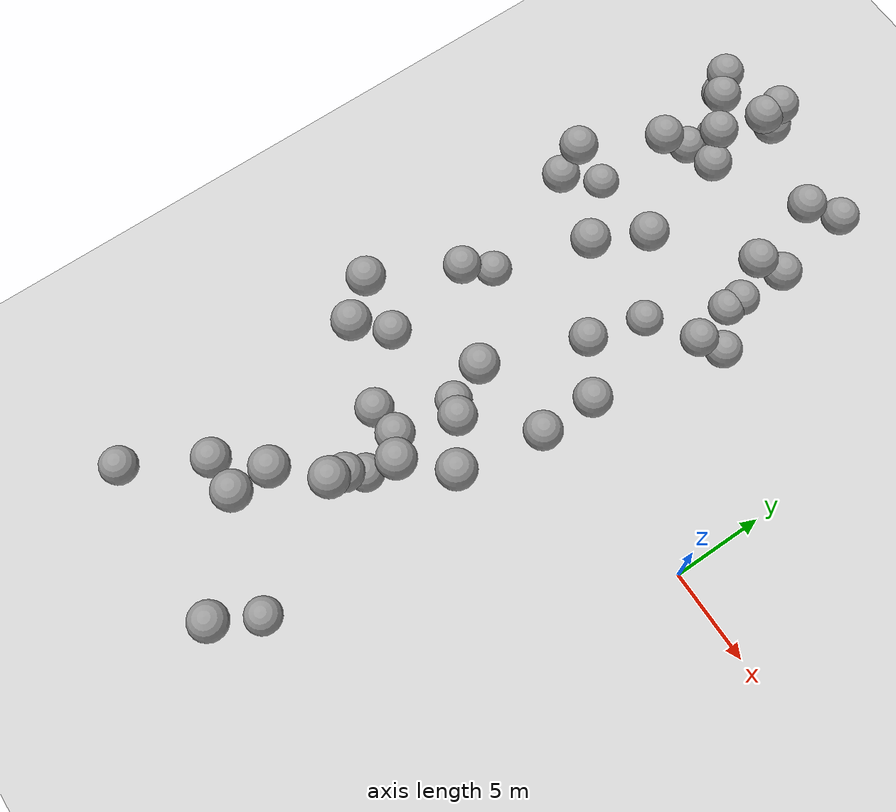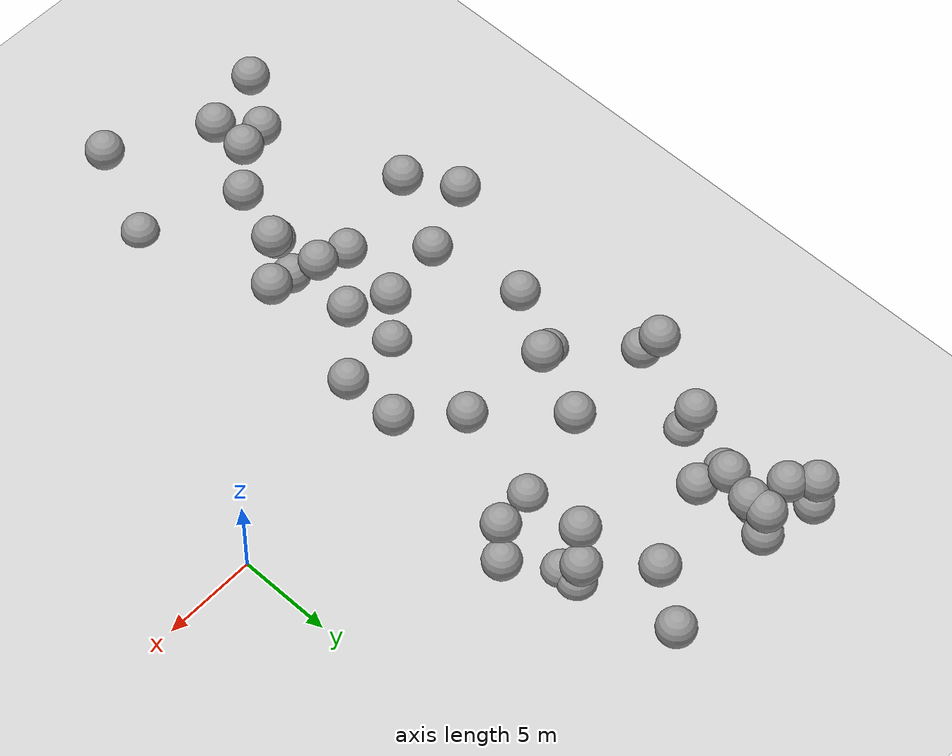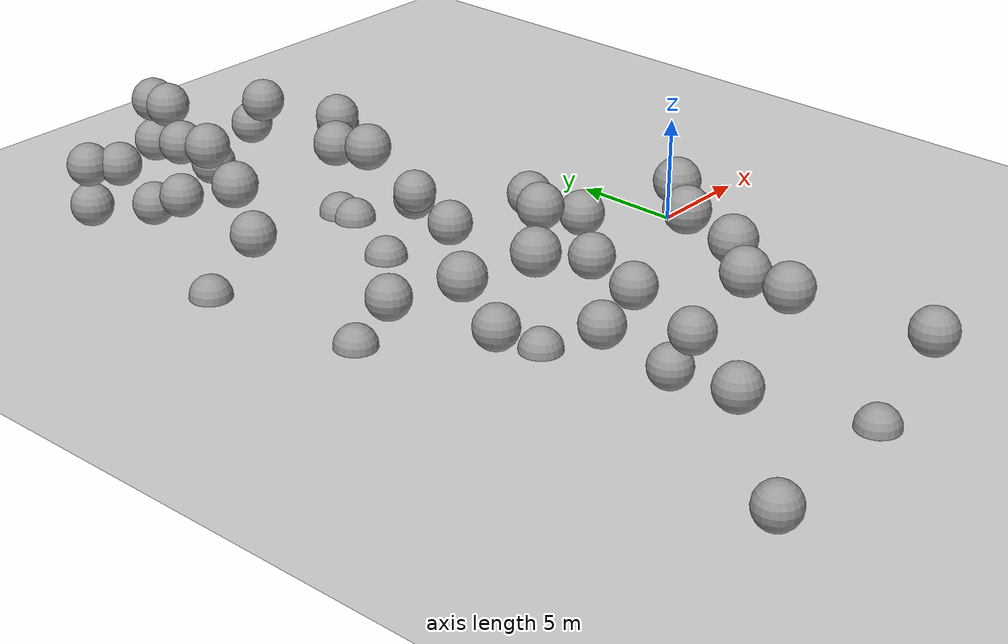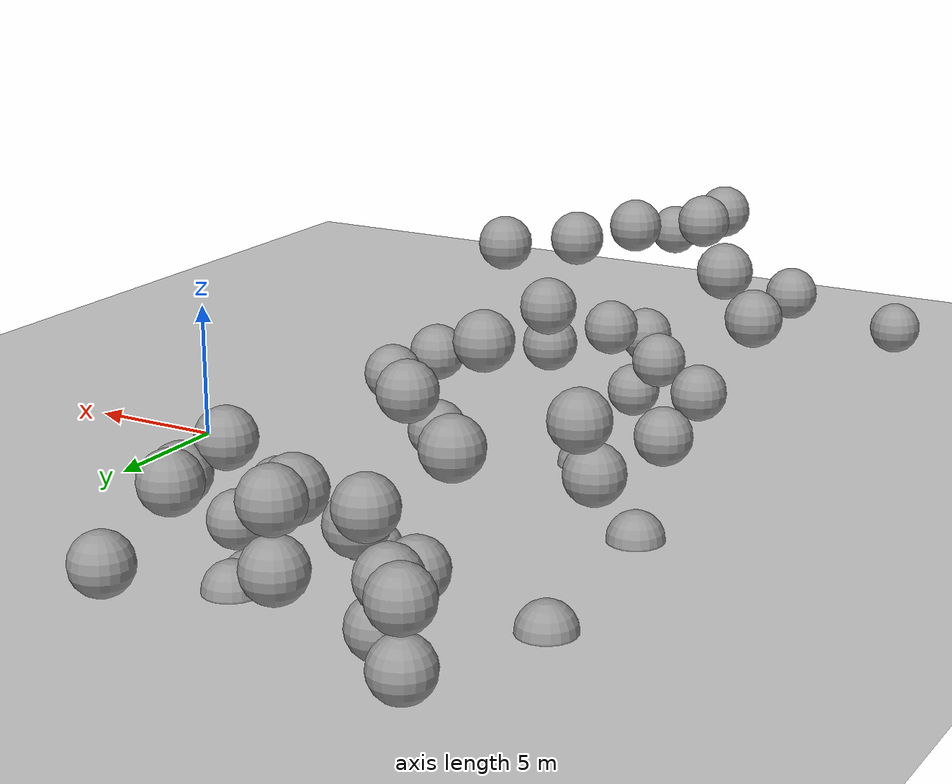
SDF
<sdf version="1.7">
 <world name="default">
  <model name="ground_plane">
   <static>1</static>
   <link name="link">
    <collision name="collision">
     <geometry><plane><normal>0 0 1</normal><size>100 100</size></plane></geometry>
     <surface>
      <contact><collide_bitmask>65535</collide_bitmask></contact>
      <friction><ode><mu>100</mu><mu2>50</mu2></ode></friction>
     </surface>
    </collision>
    <visual name="visual">
     <cast_shadows>0</cast_shadows>
     <geometry><plane><normal>0 0 1</normal><size>100 100</size></plane></geometry>
     <material>
      <script><uri>file://media/materials/scripts/gazebo.material</uri><name>Gazebo/Grey</name></script>
     </material>
    </visual>
   </link>
  </model>
  <model name="sphere_4">
   <static>1</static>
   <pose>-10 12 0 0 0 0</pose>
   <link name="link">
    <inertial>
     <mass>418.87902047863906</mass>
     <inertia>
      <ixx>167.55160819145564</ixx>
      <iyy>167.55160819145564</iyy>
      <izz>167.55160819145564</izz>
      <ixy>0</ixy>
      <ixz>0</ixz>
      <iyz>0</iyz>
     </inertia>
    </inertial>
    <collision name="collision"><geometry><sphere><radius>1.0</radius></sphere></geometry></collision>
    <visual name="visual">
     <geometry><sphere><radius>1.0</radius></sphere></geometry>
     <material>
      <script><uri>file://media/materials/scripts/gazebo.material</uri><name>Gazebo/Grey</name></script>
     </material>
    </visual>
   </link>
  </model>
  <model name="sphere_6">
   <static>1</static>
   <pose>-20 -20 2 0 0 0</pose>
   <link name="link">
    <inertial>
     <mass>418.87902047863906</mass>
     <inertia>
      <ixx>167.55160819145564</ixx>
      <iyy>167.55160819145564</iyy>
      <izz>167.55160819145564</izz>
      <ixy>0</ixy>
      <ixz>0</ixz>
      <iyz>0</iyz>
     </inertia>
    </inertial>
    <collision name="collision"><geometry><sphere><radius>1.0</radius></sphere></geometry></collision>
    <visual name="visual">
     <geometry><sphere><radius>1.0</radius></sphere></geometry>
     <material>
      <script><uri>file://media/materials/scripts/gazebo.material</uri><name>Gazebo/Grey</name></script>
     </material>
    </visual>
   </link>
  </model>
  <model name="sphere_8">
   <static>1</static>
   <pose>-16 18 4 0 0 0</pose>
   <link name="link">
    <inertial>
     <mass>418.87902047863906</mass>
     <inertia>
      <ixx>167.55160819145564</ixx>
      <iyy>167.55160819145564</iyy>
      <izz>167.55160819145564</izz>
      <ixy>0</ixy>
      <ixz>0</ixz>
      <iyz>0</iyz>
     </inertia>
    </inertial>
    <collision name="collision"><geometry><sphere><radius>1.0</radius></sphere></geometry></collision>
    <visual name="visual">
     <geometry><sphere><radius>1.0</radius></sphere></geometry>
     <material>
      <script><uri>file://media/materials/scripts/gazebo.material</uri><name>Gazebo/Grey</name></script>
     </material>
    </visual>
   </link>
  </model>
  <model name="sphere_11">
   <static>1</static>
   <pose>-18 -7 7 0 0 0</pose>
   <link name="link">
    <inertial>
     <mass>418.87902047863906</mass>
     <inertia>
      <ixx>167.55160819145564</ixx>
      <iyy>167.55160819145564</iyy>
      <izz>167.55160819145564</izz>
      <ixy>0</ixy>
      <ixz>0</ixz>
      <iyz>0</iyz>
     </inertia>
    </inertial>
    <collision name="collision"><geometry><sphere><radius>1.0</radius></sphere></geometry></collision>
    <visual name="visual">
     <geometry><sphere><radius>1.0</radius></sphere></geometry>
     <material>
      <script><uri>file://media/materials/scripts/gazebo.material</uri><name>Gazebo/Grey</name></script>
     </material>
    </visual>
   </link>
  </model>
  <model name="sphere_14">
   <static>1</static>
   <pose>-9 -2 4 0 0 0</pose>
   <link name="link">
    <inertial>
     <mass>418.87902047863906</mass>
     <inertia>
      <ixx>167.55160819145564</ixx>
      <iyy>167.55160819145564</iyy>
      <izz>167.55160819145564</izz>
      <ixy>0</ixy>
      <ixz>0</ixz>
      <iyz>0</iyz>
     </inertia>
    </inertial>
    <collision name="collision"><geometry><sphere><radius>1.0</radius></sphere></geometry></collision>
    <visual name="visual">
     <geometry><sphere><radius>1.0</radius></sphere></geometry>
     <material>
      <script><uri>file://media/materials/scripts/gazebo.material</uri><name>Gazebo/Grey</name></script>
     </material>
    </visual>
   </link>
  </model>
  <model name="sphere_19">
   <static>1</static>
   <pose>-20 18 4 0 0 0</pose>
   <link name="link">
    <inertial>
     <mass>418.87902047863906</mass>
     <inertia>
      <ixx>167.55160819145564</ixx>
      <iyy>167.55160819145564</iyy>
      <izz>167.55160819145564</izz>
      <ixy>0</ixy>
      <ixz>0</ixz>
      <iyz>0</iyz>
     </inertia>
    </inertial>
    <collision name="collision"><geometry><sphere><radius>1.0</radius></sphere></geometry></collision>
    <visual name="visual">
     <geometry><sphere><radius>1.0</radius></sphere></geometry>
     <material>
      <script><uri>file://media/materials/scripts/gazebo.material</uri><name>Gazebo/Grey</name></script>
     </material>
    </visual>
   </link>
  </model>
  <model name="sphere_24">
   <static>1</static>
   <pose>-8 9 1 0 0 0</pose>
   <link name="link">
    <inertial>
     <mass>418.87902047863906</mass>
     <inertia>
      <ixx>167.55160819145564</ixx>
      <iyy>167.55160819145564</iyy>
      <izz>167.55160819145564</izz>
      <ixy>0</ixy>
      <ixz>0</ixz>
      <iyz>0</iyz>
     </inertia>
    </inertial>
    <collision name="collision"><geometry><sphere><radius>1.0</radius></sphere></geometry></collision>
    <visual name="visual">
     <geometry><sphere><radius>1.0</radius></sphere></geometry>
     <material>
      <script><uri>file://media/materials/scripts/gazebo.material</uri><name>Gazebo/Grey</name></script>
     </material>
    </visual>
   </link>
  </model>
  <model name="sphere_26">
   <static>1</static>
   <pose>-14 8 6 0 0 0</pose>
   <link name="link">
    <inertial>
     <mass>418.87902047863906</mass>
     <inertia>
      <ixx>167.55160819145564</ixx>
      <iyy>167.55160819145564</iyy>
      <izz>167.55160819145564</izz>
      <ixy>0</ixy>
      <ixz>0</ixz>
      <iyz>0</iyz>
     </inertia>
    </inertial>
    <collision name="collision"><geometry><sphere><radius>1.0</radius></sphere></geometry></collision>
    <visual name="visual">
     <geometry><sphere><radius>1.0</radius></sphere></geometry>
     <material>
      <script><uri>file://media/materials/scripts/gazebo.material</uri><name>Gazebo/Grey</name></script>
     </material>
    </visual>
   </link>
  </model>
  <model name="sphere_29">
   <static>1</static>
   <pose>-9 -7 7 0 0 0</pose>
   <link name="link">
    <inertial>
     <mass>418.87902047863906</mass>
     <inertia>
      <ixx>167.55160819145564</ixx>
      <iyy>167.55160819145564</iyy>
      <izz>167.55160819145564</izz>
      <ixy>0</ixy>
      <ixz>0</ixz>
      <iyz>0</iyz>
     </inertia>
    </inertial>
    <collision name="collision"><geometry><sphere><radius>1.0</radius></sphere></geometry></collision>
    <visual name="visual">
     <geometry><sphere><radius>1.0</radius></sphere></geometry>
     <material>
      <script><uri>file://media/materials/scripts/gazebo.material</uri><name>Gazebo/Grey</name></script>
     </material>
    </visual>
   </link>
  </model>
  <model name="sphere_31">
   <static>1</static>
   <pose>-19 17 4 0 0 0</pose>
   <link name="link">
    <inertial>
     <mass>418.87902047863906</mass>
     <inertia>
      <ixx>167.55160819145564</ixx>
      <iyy>167.55160819145564</iyy>
      <izz>167.55160819145564</izz>
      <ixy>0</ixy>
      <ixz>0</ixz>
      <iyz>0</iyz>
     </inertia>
    </inertial>
    <collision name="collision"><geometry><sphere><radius>1.0</radius></sphere></geometry></collision>
    <visual name="visual">
     <geometry><sphere><radius>1.0</radius></sphere></geometry>
     <material>
      <script><uri>file://media/materials/scripts/gazebo.material</uri><name>Gazebo/Grey</name></script>
     </material>
    </visual>
   </link>
  </model>
  <model name="sphere_32">
   <static>1</static>
   <pose>-9 1 4 0 0 0</pose>
   <link name="link">
    <inertial>
     <mass>418.87902047863906</mass>
     <inertia>
      <ixx>167.55160819145564</ixx>
      <iyy>167.55160819145564</iyy>
      <izz>167.55160819145564</izz>
      <ixy>0</ixy>
      <ixz>0</ixz>
      <iyz>0</iyz>
     </inertia>
    </inertial>
    <collision name="collision"><geometry><sphere><radius>1.0</radius></sphere></geometry></collision>
    <visual name="visual">
     <geometry><sphere><radius>1.0</radius></sphere></geometry>
     <material>
      <script><uri>file://media/materials/scripts/gazebo.material</uri><name>Gazebo/Grey</name></script>
     </material>
    </visual>
   </link>
  </model>
  <model name="sphere_33">
   <static>1</static>
   <pose>-15 5 7 0 0 0</pose>
   <link name="link">
    <inertial>
     <mass>418.87902047863906</mass>
     <inertia>
      <ixx>167.55160819145564</ixx>
      <iyy>167.55160819145564</iyy>
      <izz>167.55160819145564</izz>
      <ixy>0</ixy>
      <ixz>0</ixz>
      <iyz>0</iyz>
     </inertia>
    </inertial>
    <collision name="collision"><geometry><sphere><radius>1.0</radius></sphere></geometry></collision>
    <visual name="visual">
     <geometry><sphere><radius>1.0</radius></sphere></geometry>
     <material>
      <script><uri>file://media/materials/scripts/gazebo.material</uri><name>Gazebo/Grey</name></script>
     </material>
    </visual>
   </link>
  </model>
  <model name="sphere_34">
   <static>1</static>
   <pose>-13 -10 1 0 0 0</pose>
   <link name="link">
    <inertial>
     <mass>418.87902047863906</mass>
     <inertia>
      <ixx>167.55160819145564</ixx>
      <iyy>167.55160819145564</iyy>
      <izz>167.55160819145564</izz>
      <ixy>0</ixy>
      <ixz>0</ixz>
      <iyz>0</iyz>
     </inertia>
    </inertial>
    <collision name="collision"><geometry><sphere><radius>1.0</radius></sphere></geometry></collision>
    <visual name="visual">
     <geometry><sphere><radius>1.0</radius></sphere></geometry>
     <material>
      <script><uri>file://media/materials/scripts/gazebo.material</uri><name>Gazebo/Grey</name></script>
     </material>
    </visual>
   </link>
  </model>
  <model name="sphere_35">
   <static>1</static>
   <pose>-20 -5 6 0 0 0</pose>
   <link name="link">
    <inertial>
     <mass>418.87902047863906</mass>
     <inertia>
      <ixx>167.55160819145564</ixx>
      <iyy>167.55160819145564</iyy>
      <izz>167.55160819145564</izz>
      <ixy>0</ixy>
      <ixz>0</ixz>
      <iyz>0</iyz>
     </inertia>
    </inertial>
    <collision name="collision"><geometry><sphere><radius>1.0</radius></sphere></geometry></collision>
    <visual name="visual">
     <geometry><sphere><radius>1.0</radius></sphere></geometry>
     <material>
      <script><uri>file://media/materials/scripts/gazebo.material</uri><name>Gazebo/Grey</name></script>
     </material>
    </visual>
   </link>
  </model>
  <model name="sphere_36">
   <static>1</static>
   <pose>-20 7 4 0 0 0</pose>
   <link name="link">
    <inertial>
     <mass>418.87902047863906</mass>
     <inertia>
      <ixx>167.55160819145564</ixx>
      <iyy>167.55160819145564</iyy>
      <izz>167.55160819145564</izz>
      <ixy>0</ixy>
      <ixz>0</ixz>
      <iyz>0</iyz>
     </inertia>
    </inertial>
    <collision name="collision"><geometry><sphere><radius>1.0</radius></sphere></geometry></collision>
    <visual name="visual">
     <geometry><sphere><radius>1.0</radius></sphere></geometry>
     <material>
      <script><uri>file://media/materials/scripts/gazebo.material</uri><name>Gazebo/Grey</name></script>
     </material>
    </visual>
   </link>
  </model>
  <model name="sphere_40">
   <static>1</static>
   <pose>-10 -18 0 0 0 0</pose>
   <link name="link">
    <inertial>
     <mass>418.87902047863906</mass>
     <inertia>
      <ixx>167.55160819145564</ixx>
      <iyy>167.55160819145564</iyy>
      <izz>167.55160819145564</izz>
      <ixy>0</ixy>
      <ixz>0</ixz>
      <iyz>0</iyz>
     </inertia>
    </inertial>
    <collision name="collision"><geometry><sphere><radius>1.0</radius></sphere></geometry></collision>
    <visual name="visual">
     <geometry><sphere><radius>1.0</radius></sphere></geometry>
     <material>
      <script><uri>file://media/materials/scripts/gazebo.material</uri><name>Gazebo/Grey</name></script>
     </material>
    </visual>
   </link>
  </model>
  <model name="sphere_44">
   <static>1</static>
   <pose>-20 8 6 0 0 0</pose>
   <link name="link">
    <inertial>
     <mass>418.87902047863906</mass>
     <inertia>
      <ixx>167.55160819145564</ixx>
      <iyy>167.55160819145564</iyy>
      <izz>167.55160819145564</izz>
      <ixy>0</ixy>
      <ixz>0</ixz>
      <iyz>0</iyz>
     </inertia>
    </inertial>
    <collision name="collision"><geometry><sphere><radius>1.0</radius></sphere></geometry></collision>
    <visual name="visual">
     <geometry><sphere><radius>1.0</radius></sphere></geometry>
     <material>
      <script><uri>file://media/materials/scripts/gazebo.material</uri><name>Gazebo/Grey</name></script>
     </material>
    </visual>
   </link>
  </model>
  <model name="sphere_46">
   <static>1</static>
   <pose>-13 -8 4 0 0 0</pose>
   <link name="link">
    <inertial>
     <mass>418.87902047863906</mass>
     <inertia>
      <ixx>167.55160819145564</ixx>
      <iyy>167.55160819145564</iyy>
      <izz>167.55160819145564</izz>
      <ixy>0</ixy>
      <ixz>0</ixz>
      <iyz>0</iyz>
     </inertia>
    </inertial>
    <collision name="collision"><geometry><sphere><radius>1.0</radius></sphere></geometry></collision>
    <visual name="visual">
     <geometry><sphere><radius>1.0</radius></sphere></geometry>
     <material>
      <script><uri>file://media/materials/scripts/gazebo.material</uri><name>Gazebo/Grey</name></script>
     </material>
    </visual>
   </link>
  </model>
  <model name="sphere_50">
   <static>1</static>
   <pose>-15 -8 3 0 0 0</pose>
   <link name="link">
    <inertial>
     <mass>418.87902047863906</mass>
     <inertia>
      <ixx>167.55160819145564</ixx>
      <iyy>167.55160819145564</iyy>
      <izz>167.55160819145564</izz>
      <ixy>0</ixy>
      <ixz>0</ixz>
      <iyz>0</iyz>
     </inertia>
    </inertial>
    <collision name="collision"><geometry><sphere><radius>1.0</radius></sphere></geometry></collision>
    <visual name="visual">
     <geometry><sphere><radius>1.0</radius></sphere></geometry>
     <material>
      <script><uri>file://media/materials/scripts/gazebo.material</uri><name>Gazebo/Grey</name></script>
     </material>
    </visual>
   </link>
  </model>
  <model name="sphere_53">
   <static>1</static>
   <pose>-10 11 0 0 0 0</pose>
   <link name="link">
    <inertial>
     <mass>418.87902047863906</mass>
     <inertia>
      <ixx>167.55160819145564</ixx>
      <iyy>167.55160819145564</iyy>
      <izz>167.55160819145564</izz>
      <ixy>0</ixy>
      <ixz>0</ixz>
      <iyz>0</iyz>
     </inertia>
    </inertial>
    <collision name="collision"><geometry><sphere><radius>1.0</radius></sphere></geometry></collision>
    <visual name="visual">
     <geometry><sphere><radius>1.0</radius></sphere></geometry>
     <material>
      <script><uri>file://media/materials/scripts/gazebo.material</uri><name>Gazebo/Grey</name></script>
     </material>
    </visual>
   </link>
  </model>
  <model name="sphere_61">
   <static>1</static>
   <pose>-9 13 4 0 0 0</pose>
   <link name="link">
    <inertial>
     <mass>418.87902047863906</mass>
     <inertia>
      <ixx>167.55160819145564</ixx>
      <iyy>167.55160819145564</iyy>
      <izz>167.55160819145564</izz>
      <ixy>0</ixy>
      <ixz>0</ixz>
      <iyz>0</iyz>
     </inertia>
    </inertial>
    <collision name="collision"><geometry><sphere><radius>1.0</radius></sphere></geometry></collision>
    <visual name="visual">
     <geometry><sphere><radius>1.0</radius></sphere></geometry>
     <material>
      <script><uri>file://media/materials/scripts/gazebo.material</uri><name>Gazebo/Grey</name></script>
     </material>
    </visual>
   </link>
  </model>
  <model name="sphere_65">
   <static>1</static>
   <pose>-18 12 6 0 0 0</pose>
   <link name="link">
    <inertial>
     <mass>418.87902047863906</mass>
     <inertia>
      <ixx>167.55160819145564</ixx>
      <iyy>167.55160819145564</iyy>
      <izz>167.55160819145564</izz>
      <ixy>0</ixy>
      <ixz>0</ixz>
      <iyz>0</iyz>
     </inertia>
    </inertial>
    <collision name="collision"><geometry><sphere><radius>1.0</radius></sphere></geometry></collision>
    <visual name="visual">
     <geometry><sphere><radius>1.0</radius></sphere></geometry>
     <material>
      <script><uri>file://media/materials/scripts/gazebo.material</uri><name>Gazebo/Grey</name></script>
     </material>
    </visual>
   </link>
  </model>
  <model name="sphere_66">
   <static>1</static>
   <pose>-12 7 0 0 0 0</pose>
   <link name="link">
    <inertial>
     <mass>418.87902047863906</mass>
     <inertia>
      <ixx>167.55160819145564</ixx>
      <iyy>167.55160819145564</iyy>
      <izz>167.55160819145564</izz>
      <ixy>0</ixy>
      <ixz>0</ixz>
      <iyz>0</iyz>
     </inertia>
    </inertial>
    <collision name="collision"><geometry><sphere><radius>1.0</radius></sphere></geometry></collision>
    <visual name="visual">
     <geometry><sphere><radius>1.0</radius></sphere></geometry>
     <material>
      <script><uri>file://media/materials/scripts/gazebo.material</uri><name>Gazebo/Grey</name></script>
     </material>
    </visual>
   </link>
  </model>
  <model name="sphere_71">
   <static>1</static>
   <pose>-18 16 2 0 0 0</pose>
   <link name="link">
    <inertial>
     <mass>418.87902047863906</mass>
     <inertia>
      <ixx>167.55160819145564</ixx>
      <iyy>167.55160819145564</iyy>
      <izz>167.55160819145564</izz>
      <ixy>0</ixy>
      <ixz>0</ixz>
      <iyz>0</iyz>
     </inertia>
    </inertial>
    <collision name="collision"><geometry><sphere><radius>1.0</radius></sphere></geometry></collision>
    <visual name="visual">
     <geometry><sphere><radius>1.0</radius></sphere></geometry>
     <material>
      <script><uri>file://media/materials/scripts/gazebo.material</uri><name>Gazebo/Grey</name></script>
     </material>
    </visual>
   </link>
  </model>
  <model name="sphere_75">
   <static>1</static>
   <pose>-13 -3 6 0 0 0</pose>
   <link name="link">
    <inertial>
     <mass>418.87902047863906</mass>
     <inertia>
      <ixx>167.55160819145564</ixx>
      <iyy>167.55160819145564</iyy>
      <izz>167.55160819145564</izz>
      <ixy>0</ixy>
      <ixz>0</ixz>
      <iyz>0</iyz>
     </inertia>
    </inertial>
    <collision name="collision"><geometry><sphere><radius>1.0</radius></sphere></geometry></collision>
    <visual name="visual">
     <geometry><sphere><radius>1.0</radius></sphere></geometry>
     <material>
      <script><uri>file://media/materials/scripts/gazebo.material</uri><name>Gazebo/Grey</name></script>
     </material>
    </visual>
   </link>
  </model>
  <model name="sphere_78">
   <static>1</static>
   <pose>-12 -5 4 0 0 0</pose>
   <link name="link">
    <inertial>
     <mass>418.87902047863906</mass>
     <inertia>
      <ixx>167.55160819145564</ixx>
      <iyy>167.55160819145564</iyy>
      <izz>167.55160819145564</izz>
      <ixy>0</ixy>
      <ixz>0</ixz>
      <iyz>0</iyz>
     </inertia>
    </inertial>
    <collision name="collision"><geometry><sphere><radius>1.0</radius></sphere></geometry></collision>
    <visual name="visual">
     <geometry><sphere><radius>1.0</radius></sphere></geometry>
     <material>
      <script><uri>file://media/materials/scripts/gazebo.material</uri><name>Gazebo/Grey</name></script>
     </material>
    </visual>
   </link>
  </model>
  <model name="sphere_79">
   <static>1</static>
   <pose>-19 2 0 0 0 0</pose>
   <link name="link">
    <inertial>
     <mass>418.87902047863906</mass>
     <inertia>
      <ixx>167.55160819145564</ixx>
      <iyy>167.55160819145564</iyy>
      <izz>167.55160819145564</izz>
      <ixy>0</ixy>
      <ixz>0</ixz>
      <iyz>0</iyz>
     </inertia>
    </inertial>
    <collision name="collision"><geometry><sphere><radius>1.0</radius></sphere></geometry></collision>
    <visual name="visual">
     <geometry><sphere><radius>1.0</radius></sphere></geometry>
     <material>
      <script><uri>file://media/materials/scripts/gazebo.material</uri><name>Gazebo/Grey</name></script>
     </material>
    </visual>
   </link>
  </model>
  <model name="sphere_84">
   <static>1</static>
   <pose>-18 14 3 0 0 0</pose>
   <link name="link">
    <inertial>
     <mass>418.87902047863906</mass>
     <inertia>
      <ixx>167.55160819145564</ixx>
      <iyy>167.55160819145564</iyy>
      <izz>167.55160819145564</izz>
      <ixy>0</ixy>
      <ixz>0</ixz>
      <iyz>0</iyz>
     </inertia>
    </inertial>
    <collision name="collision"><geometry><sphere><radius>1.0</radius></sphere></geometry></collision>
    <visual name="visual">
     <geometry><sphere><radius>1.0</radius></sphere></geometry>
     <material>
      <script><uri>file://media/materials/scripts/gazebo.material</uri><name>Gazebo/Grey</name></script>
     </material>
    </visual>
   </link>
  </model>
  <model name="sphere_87">
   <static>1</static>
   <pose>-11 -9 7 0 0 0</pose>
   <link name="link">
    <inertial>
     <mass>418.87902047863906</mass>
     <inertia>
      <ixx>167.55160819145564</ixx>
      <iyy>167.55160819145564</iyy>
      <izz>167.55160819145564</izz>
      <ixy>0</ixy>
      <ixz>0</ixz>
      <iyz>0</iyz>
     </inertia>
    </inertial>
    <collision name="collision"><geometry><sphere><radius>1.0</radius></sphere></geometry></collision>
    <visual name="visual">
     <geometry><sphere><radius>1.0</radius></sphere></geometry>
     <material>
      <script><uri>file://media/materials/scripts/gazebo.material</uri><name>Gazebo/Grey</name></script>
     </material>
    </visual>
   </link>
  </model>
  <model name="sphere_91">
   <static>1</static>
   <pose>-16 18 6 0 0 0</pose>
   <link name="link">
    <inertial>
     <mass>418.87902047863906</mass>
     <inertia>
      <ixx>167.55160819145564</ixx>
      <iyy>167.55160819145564</iyy>
      <izz>167.55160819145564</izz>
      <ixy>0</ixy>
      <ixz>0</ixz>
      <iyz>0</iyz>
     </inertia>
    </inertial>
    <collision name="collision"><geometry><sphere><radius>1.0</radius></sphere></geometry></collision>
    <visual name="visual">
     <geometry><sphere><radius>1.0</radius></sphere></geometry>
     <material>
      <script><uri>file://media/materials/scripts/gazebo.material</uri><name>Gazebo/Grey</name></script>
     </material>
    </visual>
   </link>
  </model>
  <model name="sphere_95">
   <static>1</static>
   <pose>-12 3 3 0 0 0</pose>
   <link name="link">
    <inertial>
     <mass>418.87902047863906</mass>
     <inertia>
      <ixx>167.55160819145564</ixx>
      <iyy>167.55160819145564</iyy>
      <izz>167.55160819145564</izz>
      <ixy>0</ixy>
      <ixz>0</ixz>
      <iyz>0</iyz>
     </inertia>
    </inertial>
    <collision name="collision"><geometry><sphere><radius>1.0</radius></sphere></geometry></collision>
    <visual name="visual">
     <geometry><sphere><radius>1.0</radius></sphere></geometry>
     <material>
      <script><uri>file://media/materials/scripts/gazebo.material</uri><name>Gazebo/Grey</name></script>
     </material>
    </visual>
   </link>
  </model>
  <model name="sphere_98">
   <static>1</static>
   <pose>-16 17 6 0 0 0</pose>
   <link name="link">
    <inertial>
     <mass>418.87902047863906</mass>
     <inertia>
      <ixx>167.55160819145564</ixx>
      <iyy>167.55160819145564</iyy>
      <izz>167.55160819145564</izz>
      <ixy>0</ixy>
      <ixz>0</ixz>
      <iyz>0</iyz>
     </inertia>
    </inertial>
    <collision name="collision"><geometry><sphere><radius>1.0</radius></sphere></geometry></collision>
    <visual name="visual">
     <geometry><sphere><radius>1.0</radius></sphere></geometry>
     <material>
      <script><uri>file://media/materials/scripts/gazebo.material</uri><name>Gazebo/Grey</name></script>
     </material>
    </visual>
   </link>
  </model>
  <model name="sphere_101">
   <static>1</static>
   <pose>-20 18 2 0 0 0</pose>
   <link name="link">
    <inertial>
     <mass>418.87902047863906</mass>
     <inertia>
      <ixx>167.55160819145564</ixx>
      <iyy>167.55160819145564</iyy>
      <izz>167.55160819145564</izz>
      <ixy>0</ixy>
      <ixz>0</ixz>
      <iyz>0</iyz>
     </inertia>
    </inertial>
    <collision name="collision"><geometry><sphere><radius>1.0</radius></sphere></geometry></collision>
    <visual name="visual">
     <geometry><sphere><radius>1.0</radius></sphere></geometry>
     <material>
      <script><uri>file://media/materials/scripts/gazebo.material</uri><name>Gazebo/Grey</name></script>
     </material>
    </visual>
   </link>
  </model>
  <model name="sphere_103">
   <static>1</static>
   <pose>-11 16 5 0 0 0</pose>
   <link name="link">
    <inertial>
     <mass>418.87902047863906</mass>
     <inertia>
      <ixx>167.55160819145564</ixx>
      <iyy>167.55160819145564</iyy>
      <izz>167.55160819145564</izz>
      <ixy>0</ixy>
      <ixz>0</ixz>
      <iyz>0</iyz>
     </inertia>
    </inertial>
    <collision name="collision"><geometry><sphere><radius>1.0</radius></sphere></geometry></collision>
    <visual name="visual">
     <geometry><sphere><radius>1.0</radius></sphere></geometry>
     <material>
      <script><uri>file://media/materials/scripts/gazebo.material</uri><name>Gazebo/Grey</name></script>
     </material>
    </visual>
   </link>
  </model>
  <model name="sphere_105">
   <static>1</static>
   <pose>-14 -14 7 0 0 0</pose>
   <link name="link">
    <inertial>
     <mass>418.87902047863906</mass>
     <inertia>
      <ixx>167.55160819145564</ixx>
      <iyy>167.55160819145564</iyy>
      <izz>167.55160819145564</izz>
      <ixy>0</ixy>
      <ixz>0</ixz>
      <iyz>0</iyz>
     </inertia>
    </inertial>
    <collision name="collision"><geometry><sphere><radius>1.0</radius></sphere></geometry></collision>
    <visual name="visual">
     <geometry><sphere><radius>1.0</radius></sphere></geometry>
     <material>
      <script><uri>file://media/materials/scripts/gazebo.material</uri><name>Gazebo/Grey</name></script>
     </material>
    </visual>
   </link>
  </model>
  <model name="sphere_106">
   <static>1</static>
   <pose>-16 14 4 0 0 0</pose>
   <link name="link">
    <inertial>
     <mass>418.87902047863906</mass>
     <inertia>
      <ixx>167.55160819145564</ixx>
      <iyy>167.55160819145564</iyy>
      <izz>167.55160819145564</izz>
      <ixy>0</ixy>
      <ixz>0</ixz>
      <iyz>0</iyz>
     </inertia>
    </inertial>
    <collision name="collision"><geometry><sphere><radius>1.0</radius></sphere></geometry></collision>
    <visual name="visual">
     <geometry><sphere><radius>1.0</radius></sphere></geometry>
     <material>
      <script><uri>file://media/materials/scripts/gazebo.material</uri><name>Gazebo/Grey</name></script>
     </material>
    </visual>
   </link>
  </model>
  <model name="sphere_107">
   <static>1</static>
   <pose>-9 8 2 0 0 0</pose>
   <link name="link">
    <inertial>
     <mass>418.87902047863906</mass>
     <inertia>
      <ixx>167.55160819145564</ixx>
      <iyy>167.55160819145564</iyy>
      <izz>167.55160819145564</izz>
      <ixy>0</ixy>
      <ixz>0</ixz>
      <iyz>0</iyz>
     </inertia>
    </inertial>
    <collision name="collision"><geometry><sphere><radius>1.0</radius></sphere></geometry></collision>
    <visual name="visual">
     <geometry><sphere><radius>1.0</radius></sphere></geometry>
     <material>
      <script><uri>file://media/materials/scripts/gazebo.material</uri><name>Gazebo/Grey</name></script>
     </material>
    </visual>
   </link>
  </model>
  <model name="sphere_110">
   <static>1</static>
   <pose>-10 12 5 0 0 0</pose>
   <link name="link">
    <inertial>
     <mass>418.87902047863906</mass>
     <inertia>
      <ixx>167.55160819145564</ixx>
      <iyy>167.55160819145564</iyy>
      <izz>167.55160819145564</izz>
      <ixy>0</ixy>
      <ixz>0</ixz>
      <iyz>0</iyz>
     </inertia>
    </inertial>
    <collision name="collision"><geometry><sphere><radius>1.0</radius></sphere></geometry></collision>
    <visual name="visual">
     <geometry><sphere><radius>1.0</radius></sphere></geometry>
     <material>
      <script><uri>file://media/materials/scripts/gazebo.material</uri><name>Gazebo/Grey</name></script>
     </material>
    </visual>
   </link>
  </model>
  <model name="sphere_111">
   <static>1</static>
   <pose>-14 -16 7 0 0 0</pose>
   <link name="link">
    <inertial>
     <mass>418.87902047863906</mass>
     <inertia>
      <ixx>167.55160819145564</ixx>
      <iyy>167.55160819145564</iyy>
      <izz>167.55160819145564</izz>
      <ixy>0</ixy>
      <ixz>0</ixz>
      <iyz>0</iyz>
     </inertia>
    </inertial>
    <collision name="collision"><geometry><sphere><radius>1.0</radius></sphere></geometry></collision>
    <visual name="visual">
     <geometry><sphere><radius>1.0</radius></sphere></geometry>
     <material>
      <script><uri>file://media/materials/scripts/gazebo.material</uri><name>Gazebo/Grey</name></script>
     </material>
    </visual>
   </link>
  </model>
  <model name="sphere_112">
   <static>1</static>
   <pose>-18 -5 3 0 0 0</pose>
   <link name="link">
    <inertial>
     <mass>418.87902047863906</mass>
     <inertia>
      <ixx>167.55160819145564</ixx>
      <iyy>167.55160819145564</iyy>
      <izz>167.55160819145564</izz>
      <ixy>0</ixy>
      <ixz>0</ixz>
      <iyz>0</iyz>
     </inertia>
    </inertial>
    <collision name="collision"><geometry><sphere><radius>1.0</radius></sphere></geometry></collision>
    <visual name="visual">
     <geometry><sphere><radius>1.0</radius></sphere></geometry>
     <material>
      <script><uri>file://media/materials/scripts/gazebo.material</uri><name>Gazebo/Grey</name></script>
     </material>
    </visual>
   </link>
  </model>
  <model name="sphere_115">
   <static>1</static>
   <pose>-10 18 3 0 0 0</pose>
   <link name="link">
    <inertial>
     <mass>418.87902047863906</mass>
     <inertia>
      <ixx>167.55160819145564</ixx>
      <iyy>167.55160819145564</iyy>
      <izz>167.55160819145564</izz>
      <ixy>0</ixy>
      <ixz>0</ixz>
      <iyz>0</iyz>
     </inertia>
    </inertial>
    <collision name="collision"><geometry><sphere><radius>1.0</radius></sphere></geometry></collision>
    <visual name="visual">
     <geometry><sphere><radius>1.0</radius></sphere></geometry>
     <material>
      <script><uri>file://media/materials/scripts/gazebo.material</uri><name>Gazebo/Grey</name></script>
     </material>
    </visual>
   </link>
  </model>
  <model name="sphere_116">
   <static>1</static>
   <pose>-12 -12 7 0 0 0</pose>
   <link name="link">
    <inertial>
     <mass>418.87902047863906</mass>
     <inertia>
      <ixx>167.55160819145564</ixx>
      <iyy>167.55160819145564</iyy>
      <izz>167.55160819145564</izz>
      <ixy>0</ixy>
      <ixz>0</ixz>
      <iyz>0</iyz>
     </inertia>
    </inertial>
    <collision name="collision"><geometry><sphere><radius>1.0</radius></sphere></geometry></collision>
    <visual name="visual">
     <geometry><sphere><radius>1.0</radius></sphere></geometry>
     <material>
      <script><uri>file://media/materials/scripts/gazebo.material</uri><name>Gazebo/Grey</name></script>
     </material>
    </visual>
   </link>
  </model>
  <model name="sphere_120">
   <static>1</static>
   <pose>-17 -16 4 0 0 0</pose>
   <link name="link">
    <inertial>
     <mass>418.87902047863906</mass>
     <inertia>
      <ixx>167.55160819145564</ixx>
      <iyy>167.55160819145564</iyy>
      <izz>167.55160819145564</izz>
      <ixy>0</ixy>
      <ixz>0</ixz>
      <iyz>0</iyz>
     </inertia>
    </inertial>
    <collision name="collision"><geometry><sphere><radius>1.0</radius></sphere></geometry></collision>
    <visual name="visual">
     <geometry><sphere><radius>1.0</radius></sphere></geometry>
     <material>
      <script><uri>file://media/materials/scripts/gazebo.material</uri><name>Gazebo/Grey</name></script>
     </material>
    </visual>
   </link>
  </model>
  <model name="sphere_129">
   <static>1</static>
   <pose>-10 -20 5 0 0 0</pose>
   <link name="link">
    <inertial>
     <mass>418.87902047863906</mass>
     <inertia>
      <ixx>167.55160819145564</ixx>
      <iyy>167.55160819145564</iyy>
      <izz>167.55160819145564</izz>
      <ixy>0</ixy>
      <ixz>0</ixz>
      <iyz>0</iyz>
     </inertia>
    </inertial>
    <collision name="collision"><geometry><sphere><radius>1.0</radius></sphere></geometry></collision>
    <visual name="visual">
     <geometry><sphere><radius>1.0</radius></sphere></geometry>
     <material>
      <script><uri>file://media/materials/scripts/gazebo.material</uri><name>Gazebo/Grey</name></script>
     </material>
    </visual>
   </link>
  </model>
  <model name="sphere_132">
   <static>1</static>
   <pose>-16 14 4 0 0 0</pose>
   <link name="link">
    <inertial>
     <mass>418.87902047863906</mass>
     <inertia>
      <ixx>167.55160819145564</ixx>
      <iyy>167.55160819145564</iyy>
      <izz>167.55160819145564</izz>
      <ixy>0</ixy>
      <ixz>0</ixz>
      <iyz>0</iyz>
     </inertia>
    </inertial>
    <collision name="collision"><geometry><sphere><radius>1.0</radius></sphere></geometry></collision>
    <visual name="visual">
     <geometry><sphere><radius>1.0</radius></sphere></geometry>
     <material>
      <script><uri>file://media/materials/scripts/gazebo.material</uri><name>Gazebo/Grey</name></script>
     </material>
    </visual>
   </link>
  </model>
  <model name="sphere_133">
   <static>1</static>
   <pose>-13 -11 3 0 0 0</pose>
   <link name="link">
    <inertial>
     <mass>418.87902047863906</mass>
     <inertia>
      <ixx>167.55160819145564</ixx>
      <iyy>167.55160819145564</iyy>
      <izz>167.55160819145564</izz>
      <ixy>0</ixy>
      <ixz>0</ixz>
      <iyz>0</iyz>
     </inertia>
    </inertial>
    <collision name="collision"><geometry><sphere><radius>1.0</radius></sphere></geometry></collision>
    <visual name="visual">
     <geometry><sphere><radius>1.0</radius></sphere></geometry>
     <material>
      <script><uri>file://media/materials/scripts/gazebo.material</uri><name>Gazebo/Grey</name></script>
     </material>
    </visual>
   </link>
  </model>
  <model name="sphere_134">
   <static>1</static>
   <pose>-20 10 0 0 0 0</pose>
   <link name="link">
    <inertial>
     <mass>418.87902047863906</mass>
     <inertia>
      <ixx>167.55160819145564</ixx>
      <iyy>167.55160819145564</iyy>
      <izz>167.55160819145564</izz>
      <ixy>0</ixy>
      <ixz>0</ixz>
      <iyz>0</iyz>
     </inertia>
    </inertial>
    <collision name="collision"><geometry><sphere><radius>1.0</radius></sphere></geometry></collision>
    <visual name="visual">
     <geometry><sphere><radius>1.0</radius></sphere></geometry>
     <material>
      <script><uri>file://media/materials/scripts/gazebo.material</uri><name>Gazebo/Grey</name></script>
     </material>
    </visual>
   </link>
  </model>
  <model name="sphere_143">
   <static>1</static>
   <pose>-19 0 3 0 0 0</pose>
   <link name="link">
    <inertial>
     <mass>418.87902047863906</mass>
     <inertia>
      <ixx>167.55160819145564</ixx>
      <iyy>167.55160819145564</iyy>
      <izz>167.55160819145564</izz>
      <ixy>0</ixy>
      <ixz>0</ixz>
      <iyz>0</iyz>
     </inertia>
    </inertial>
    <collision name="collision"><geometry><sphere><radius>1.0</radius></sphere></geometry></collision>
    <visual name="visual">
     <geometry><sphere><radius>1.0</radius></sphere></geometry>
     <material>
      <script><uri>file://media/materials/scripts/gazebo.material</uri><name>Gazebo/Grey</name></script>
     </material>
    </visual>
   </link>
  </model>
  <model name="sphere_144">
   <static>1</static>
   <pose>-17 15 5 0 0 0</pose>
   <link name="link">
    <inertial>
     <mass>418.87902047863906</mass>
     <inertia>
      <ixx>167.55160819145564</ixx>
      <iyy>167.55160819145564</iyy>
      <izz>167.55160819145564</izz>
      <ixy>0</ixy>
      <ixz>0</ixz>
      <iyz>0</iyz>
     </inertia>
    </inertial>
    <collision name="collision"><geometry><sphere><radius>1.0</radius></sphere></geometry></collision>
    <visual name="visual">
     <geometry><sphere><radius>1.0</radius></sphere></geometry>
     <material>
      <script><uri>file://media/materials/scripts/gazebo.material</uri><name>Gazebo/Grey</name></script>
     </material>
    </visual>
   </link>
  </model>
  <model name="sphere_148">
   <static>1</static>
   <pose>-14 -4 0 0 0 0</pose>
   <link name="link">
    <inertial>
     <mass>418.87902047863906</mass>
     <inertia>
      <ixx>167.55160819145564</ixx>
      <iyy>167.55160819145564</iyy>
      <izz>167.55160819145564</izz>
      <ixy>0</ixy>
      <ixz>0</ixz>
      <iyz>0</iyz>
     </inertia>
    </inertial>
    <collision name="collision"><geometry><sphere><radius>1.0</radius></sphere></geometry></collision>
    <visual name="visual">
     <geometry><sphere><radius>1.0</radius></sphere></geometry>
     <material>
      <script><uri>file://media/materials/scripts/gazebo.material</uri><name>Gazebo/Grey</name></script>
     </material>
    </visual>
   </link>
  </model>
 </world>
</sdf>
